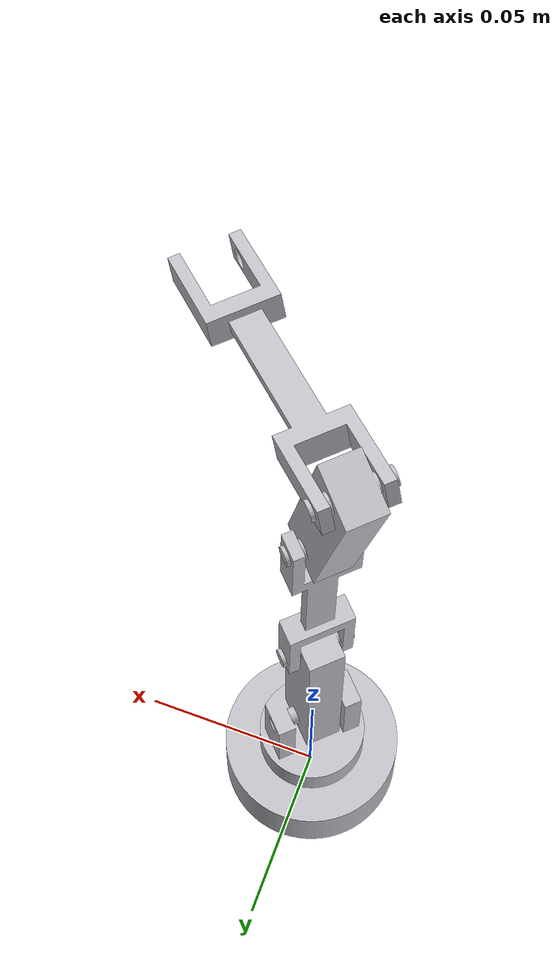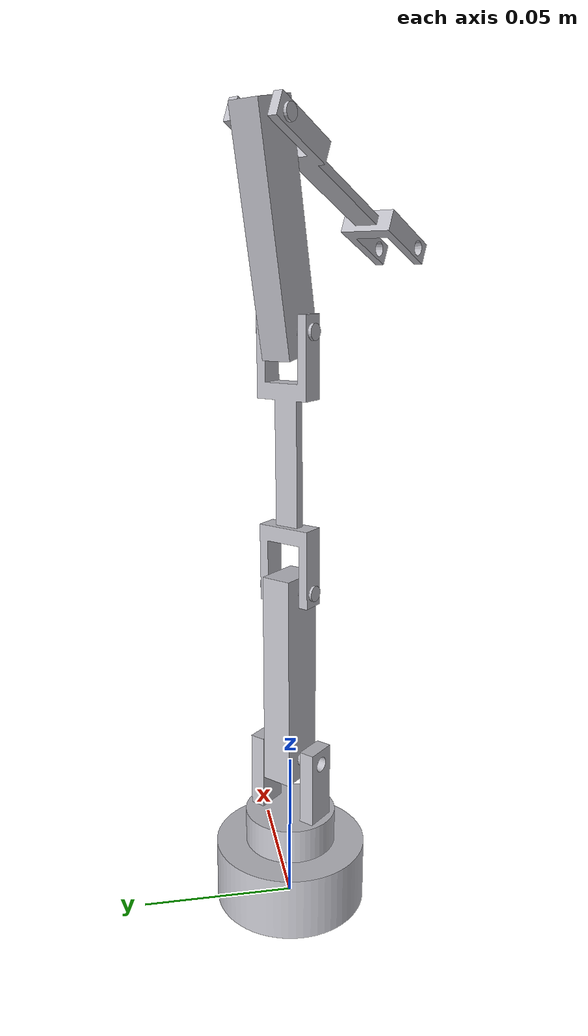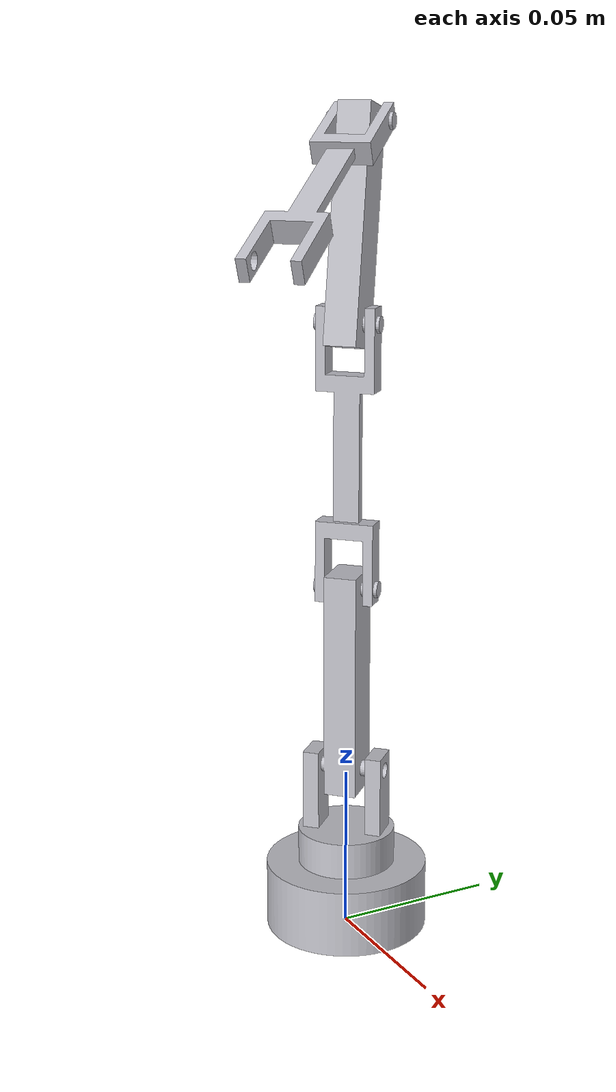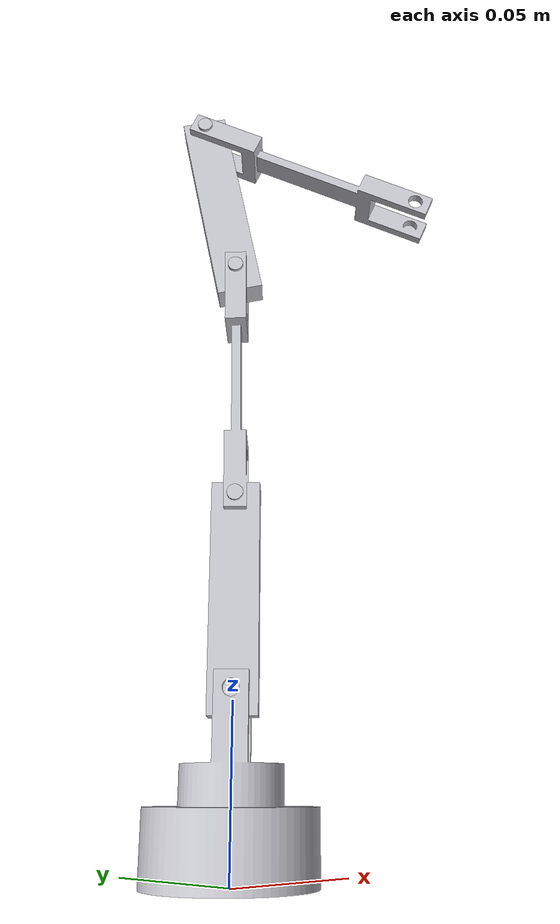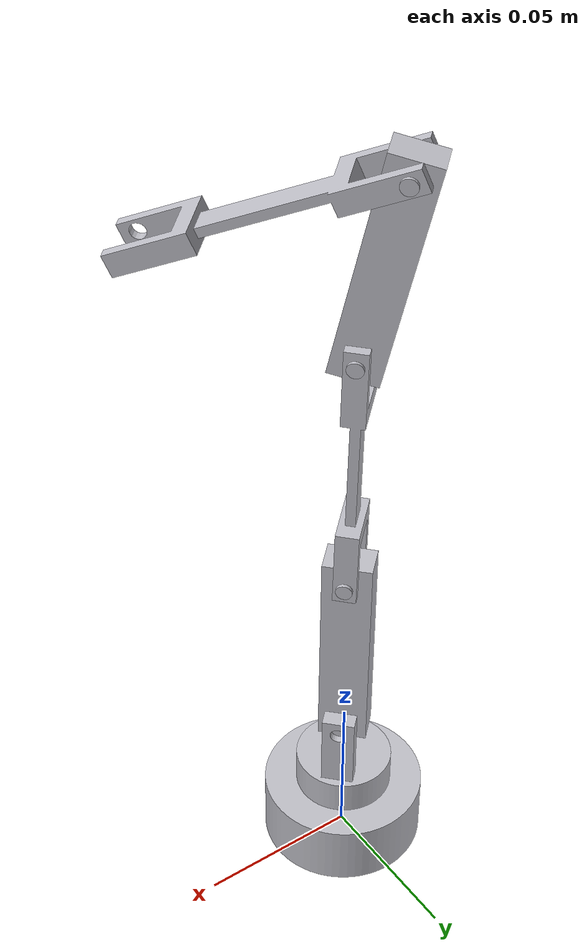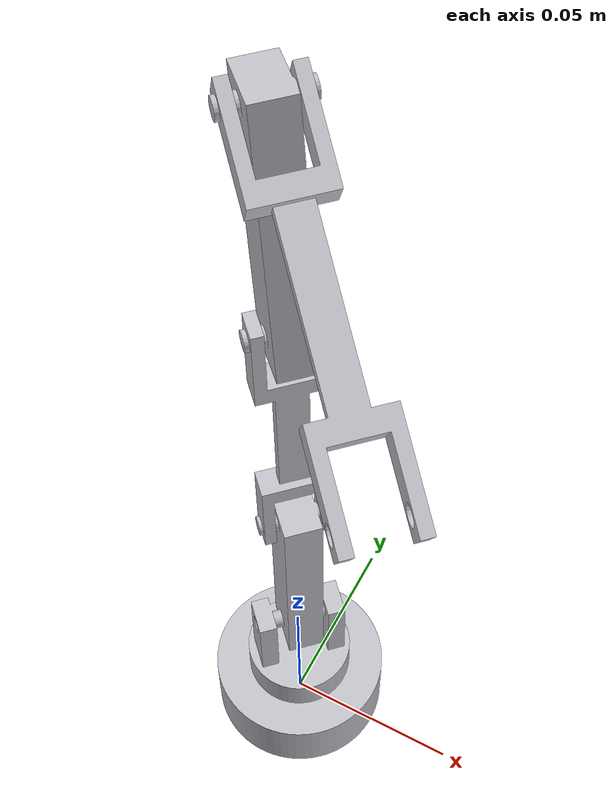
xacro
<?xml version="1.0" ?>
<robot name="robotic_arm" xmlns:xacro="http://www.ros.org/wiki/xacro">

<xacro:include filename="$(find robotic_arm_description)/urdf/materials.xacro" />
<xacro:include filename="$(find robotic_arm_description)/urdf/robotic_arm.trans" />
<xacro:include filename="$(find robotic_arm_description)/urdf/robotic_arm.gazebo" />
<link name="base_link">
  <inertial>
    <origin rpy="0 0 0" xyz="-7.549516567451065e-17 1.0658141036401501e-16 0.01023913043478264"/>
    <mass value="0.21270545760211407"/>
    <inertia ixx="5.2e-05" ixy="0.0" ixz="0.0" iyy="5.2e-05" iyz="0.0" izz="8.9e-05"/>
  </inertial>
  <visual>
    <origin rpy="0 0 0" xyz="0 0 0"/>
    <geometry>
      <mesh filename="package://robotic_arm_description/meshes/base_link.stl" scale="0.001 0.001 0.001"/>
    </geometry>
    <material name="silver"/>
  </visual>
  <collision>
    <origin rpy="0 0 0" xyz="0 0 0"/>
    <geometry>
      <mesh filename="package://robotic_arm_description/meshes/base_link.stl" scale="0.001 0.001 0.001"/>
    </geometry>
  </collision>
</link>

<link name="link_1_1">
  <inertial>
    <origin rpy="0 0 0" xyz="0.03902499999999772 0.02274099999999911 0.02406979419893251"/>
    <mass value="0.18454879683642156"/>
    <inertia ixx="3.6e-05" ixy="1e-06" ixz="0.0" iyy="3.5e-05" iyz="0.0" izz="2.1e-05"/>
  </inertial>
  <visual>
    <origin rpy="0 0 0" xyz="0.039025 0.022741 0.004076"/>
    <geometry>
      <mesh filename="package://robotic_arm_description/meshes/link_1_1.stl" scale="0.001 0.001 0.001"/>
    </geometry>
    <material name="silver"/>
  </visual>
  <collision>
    <origin rpy="0 0 0" xyz="0.039025 0.022741 0.004076"/>
    <geometry>
      <mesh filename="package://robotic_arm_description/meshes/link_1_1.stl" scale="0.001 0.001 0.001"/>
    </geometry>
  </collision>
</link>

<link name="link_2_1">
  <inertial>
    <origin rpy="0 0 0" xyz="-0.01811292323655033 0.042412543375540304 0.09467685383722765"/>
    <mass value="0.08550768779133501"/>
    <inertia ixx="2.8e-05" ixy="-5e-06" ixz="-1.5e-05" iyy="3.6e-05" iyz="-7e-06" izz="1.3e-05"/>
  </inertial>
  <visual>
    <origin rpy="0 0 0" xyz="-0.032267 0.03554 0.019188"/>
    <geometry>
      <mesh filename="package://robotic_arm_description/meshes/link_2_1.stl" scale="0.001 0.001 0.001"/>
    </geometry>
    <material name="silver"/>
  </visual>
  <collision>
    <origin rpy="0 0 0" xyz="-0.032267 0.03554 0.019188"/>
    <geometry>
      <mesh filename="package://robotic_arm_description/meshes/link_2_1.stl" scale="0.001 0.001 0.001"/>
    </geometry>
  </collision>
</link>

<link name="link_3_1">
  <inertial>
    <origin rpy="0 0 0" xyz="0.03224828326568441 0.03023872594989603 0.061032111909947104"/>
    <mass value="0.028672294410763664"/>
    <inertia ixx="1.5e-05" ixy="-2e-06" ixz="-8e-06" iyy="1.8e-05" iyz="-4e-06" izz="7e-06"/>
  </inertial>
  <visual>
    <origin rpy="0 0 0" xyz="-0.01787 0.006512 -0.07286"/>
    <geometry>
      <mesh filename="package://robotic_arm_description/meshes/link_3_1.stl" scale="0.001 0.001 0.001"/>
    </geometry>
    <material name="silver"/>
  </visual>
  <collision>
    <origin rpy="0 0 0" xyz="-0.01787 0.006512 -0.07286"/>
    <geometry>
      <mesh filename="package://robotic_arm_description/meshes/link_3_1.stl" scale="0.001 0.001 0.001"/>
    </geometry>
  </collision>
</link>

<link name="link_4_1">
  <inertial>
    <origin rpy="0 0 0" xyz="-0.0051036047910194005 -0.04522122779677818 0.08531399798083211"/>
    <mass value="0.0855076877913351"/>
    <inertia ixx="2.8e-05" ixy="-5e-06" ixz="-1.5e-05" iyy="3.6e-05" iyz="-7e-06" izz="1.3e-05"/>
  </inertial>
  <visual>
    <origin rpy="0 0 0" xyz="-0.089651 -0.085116 -0.104524"/>
    <geometry>
      <mesh filename="package://robotic_arm_description/meshes/link_4_1.stl" scale="0.001 0.001 0.001"/>
    </geometry>
    <material name="silver"/>
  </visual>
  <collision>
    <origin rpy="0 0 0" xyz="-0.089651 -0.085116 -0.104524"/>
    <geometry>
      <mesh filename="package://robotic_arm_description/meshes/link_4_1.stl" scale="0.001 0.001 0.001"/>
    </geometry>
  </collision>
</link>

<link name="link_5_1">
  <inertial>
    <origin rpy="0 0 0" xyz="0.0076869309622393245 -0.058596062798462814 0.0966104515044077"/>
    <mass value="0.028672294410763525"/>
    <inertia ixx="5e-06" ixy="-7e-06" ixz="-4e-06" iyy="1.6e-05" iyz="-2e-06" izz="1.9e-05"/>
  </inertial>
  <visual>
    <origin rpy="0 0 0" xyz="-0.127543 -0.122404 -0.128552"/>
    <geometry>
      <mesh filename="package://robotic_arm_description/meshes/link_5_1.stl" scale="0.001 0.001 0.001"/>
    </geometry>
    <material name="silver"/>
  </visual>
  <collision>
    <origin rpy="0 0 0" xyz="-0.127543 -0.122404 -0.128552"/>
    <geometry>
      <mesh filename="package://robotic_arm_description/meshes/link_5_1.stl" scale="0.001 0.001 0.001"/>
    </geometry>
  </collision>
</link>

<joint name="Rev8" type="continuous">
  <origin rpy="0 0 0" xyz="-0.039025 -0.022741 -0.004076"/>
  <parent link="base_link"/>
  <child link="link_1_1"/>
  <axis xyz="-0.0 -0.0 1.0"/>
</joint>

<joint name="Rev9" type="continuous">
  <origin rpy="0 0 0" xyz="0.071292 -0.012799 -0.015112"/>
  <parent link="link_1_1"/>
  <child link="link_2_1"/>
  <axis xyz="-0.426466 0.904503 0.0"/>
</joint>

<joint name="Rev10" type="continuous">
  <origin rpy="0 0 0" xyz="-0.014397 0.029028 0.092048"/>
  <parent link="link_2_1"/>
  <child link="link_3_1"/>
  <axis xyz="-0.426466 0.904503 0.0"/>
</joint>

<joint name="Rev11" type="continuous">
  <origin rpy="0 0 0" xyz="0.071781 0.091628 0.031664"/>
  <parent link="link_3_1"/>
  <child link="link_4_1"/>
  <axis xyz="-0.426466 0.904503 0.0"/>
</joint>

<joint name="Rev12" type="continuous">
  <origin rpy="0 0 0" xyz="0.037892 0.037288 0.024028"/>
  <parent link="link_4_1"/>
  <child link="link_5_1"/>
  <axis xyz="-0.426466 0.904503 0.0"/>
</joint>

</robot>

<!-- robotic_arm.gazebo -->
<robot name="robotic_arm" xmlns:xacro="http://www.ros.org/wiki/xacro" >

<xacro:property name="body_color" value="Gazebo/Silver" />

<gazebo>
  <plugin filename="libgazebo_ros_control.so" name="control"/>
</gazebo>
<gazebo reference="base_link">
  <material>${body_color}</material>
  <mu1>0.2</mu1>
  <mu2>0.2</mu2>
  <selfCollide>true</selfCollide>
  <gravity>true</gravity>
</gazebo>

<gazebo reference="link_1_1">
  <material>${body_color}</material>
  <mu1>0.2</mu1>
  <mu2>0.2</mu2>
  <selfCollide>true</selfCollide>
</gazebo>

<gazebo reference="link_2_1">
  <material>${body_color}</material>
  <mu1>0.2</mu1>
  <mu2>0.2</mu2>
  <selfCollide>true</selfCollide>
</gazebo>

<gazebo reference="link_3_1">
  <material>${body_color}</material>
  <mu1>0.2</mu1>
  <mu2>0.2</mu2>
  <selfCollide>true</selfCollide>
</gazebo>

<gazebo reference="link_4_1">
  <material>${body_color}</material>
  <mu1>0.2</mu1>
  <mu2>0.2</mu2>
  <selfCollide>true</selfCollide>
</gazebo>

<gazebo reference="link_5_1">
  <material>${body_color}</material>
  <mu1>0.2</mu1>
  <mu2>0.2</mu2>
  <selfCollide>true</selfCollide>
</gazebo>

</robot>
